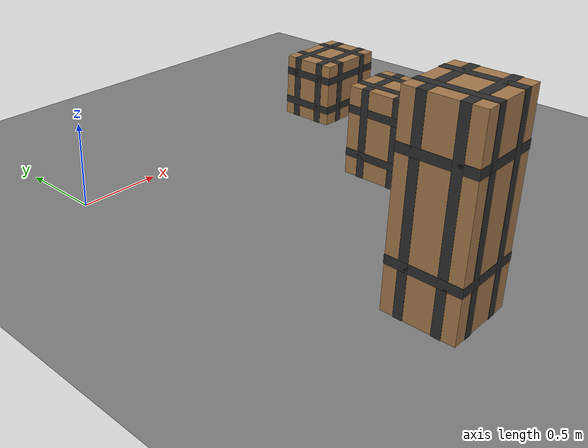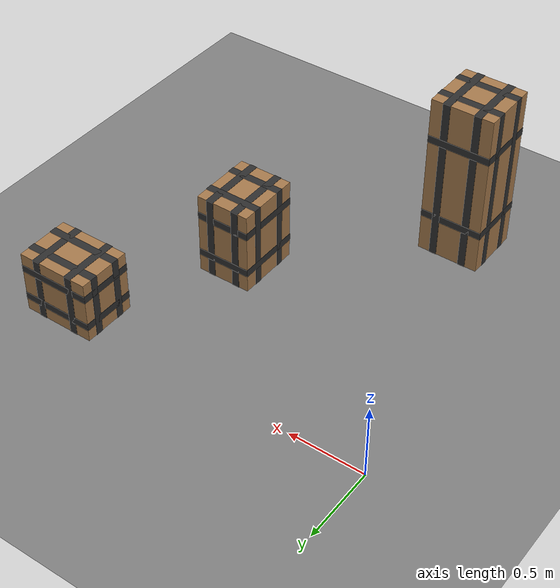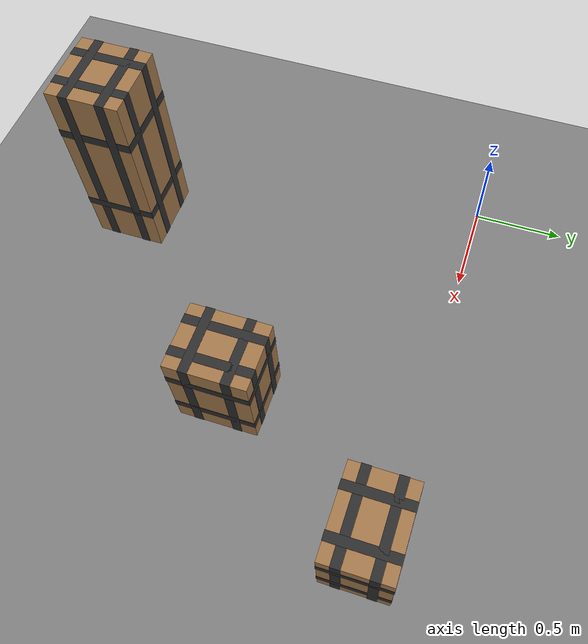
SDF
<sdf version="1.9">
 <world name="ecps295_lowbox_s19">
  <model name="ground_plane">
   <static>true</static>
   <link name="link">
    <collision name="collision">
     <geometry><plane><normal>0 0 1</normal><size>50 50</size></plane></geometry>
    </collision>
    <visual name="visual">
     <geometry><plane><normal>0 0 1</normal><size>50 50</size></plane></geometry>
     <material><ambient>0.5 0.5 0.5 1</ambient><diffuse>0.5 0.5 0.5 1</diffuse></material>
    </visual>
   </link>
  </model>
  <model name="lb1">
   <static>true</static>
   <pose>0.56 -1.95 0.55 0 0 0</pose>
   <link name="link">
    <collision name="c"><geometry><box><size>0.41 0.39 1.1</size></box></geometry></collision>
    <visual name="v">
     <geometry><box><size>0.41 0.39 1.1</size></box></geometry>
     <material><ambient>0.65 0.48 0.30 1</ambient><diffuse>0.65 0.48 0.30 1</diffuse></material>
    </visual>
    <visual name="tape_ring0">
     <pose>0.000 0.000 -0.275 0 0 0</pose>
     <geometry><box><size>0.414 0.394 0.050</size></box></geometry>
     <material><ambient>0.18 0.18 0.18 1</ambient><diffuse>0.18 0.18 0.18 1</diffuse></material>
    </visual>
    <visual name="tape_bx0">
     <pose>-0.102 0.000 0.000 0 0 0</pose>
     <geometry><box><size>0.050 0.394 1.104</size></box></geometry>
     <material><ambient>0.18 0.18 0.18 1</ambient><diffuse>0.18 0.18 0.18 1</diffuse></material>
    </visual>
    <visual name="tape_by0">
     <pose>0.000 -0.098 0.000 0 0 0</pose>
     <geometry><box><size>0.414 0.050 1.104</size></box></geometry>
     <material><ambient>0.18 0.18 0.18 1</ambient><diffuse>0.18 0.18 0.18 1</diffuse></material>
    </visual>
    <visual name="tape_ring1">
     <pose>0.000 0.000 0.275 0 0 0</pose>
     <geometry><box><size>0.414 0.394 0.050</size></box></geometry>
     <material><ambient>0.18 0.18 0.18 1</ambient><diffuse>0.18 0.18 0.18 1</diffuse></material>
    </visual>
    <visual name="tape_bx1">
     <pose>0.102 0.000 0.000 0 0 0</pose>
     <geometry><box><size>0.050 0.394 1.104</size></box></geometry>
     <material><ambient>0.18 0.18 0.18 1</ambient><diffuse>0.18 0.18 0.18 1</diffuse></material>
    </visual>
    <visual name="tape_by1">
     <pose>0.000 0.098 0.000 0 0 0</pose>
     <geometry><box><size>0.414 0.050 1.104</size></box></geometry>
     <material><ambient>0.18 0.18 0.18 1</ambient><diffuse>0.18 0.18 0.18 1</diffuse></material>
    </visual>
   </link>
  </model>
  <model name="lb2">
   <static>true</static>
   <pose>1.55 -1.0 0.28 0 0 0</pose>
   <link name="link">
    <collision name="c"><geometry><box><size>0.36 0.43 0.56</size></box></geometry></collision>
    <visual name="v">
     <geometry><box><size>0.36 0.43 0.56</size></box></geometry>
     <material><ambient>0.65 0.48 0.30 1</ambient><diffuse>0.65 0.48 0.30 1</diffuse></material>
    </visual>
    <visual name="tape_ring0">
     <pose>0.000 0.000 -0.140 0 0 0</pose>
     <geometry><box><size>0.364 0.434 0.050</size></box></geometry>
     <material><ambient>0.18 0.18 0.18 1</ambient><diffuse>0.18 0.18 0.18 1</diffuse></material>
    </visual>
    <visual name="tape_bx0">
     <pose>-0.090 0.000 0.000 0 0 0</pose>
     <geometry><box><size>0.050 0.434 0.564</size></box></geometry>
     <material><ambient>0.18 0.18 0.18 1</ambient><diffuse>0.18 0.18 0.18 1</diffuse></material>
    </visual>
    <visual name="tape_by0">
     <pose>0.000 -0.107 0.000 0 0 0</pose>
     <geometry><box><size>0.364 0.050 0.564</size></box></geometry>
     <material><ambient>0.18 0.18 0.18 1</ambient><diffuse>0.18 0.18 0.18 1</diffuse></material>
    </visual>
    <visual name="tape_ring1">
     <pose>0.000 0.000 0.140 0 0 0</pose>
     <geometry><box><size>0.364 0.434 0.050</size></box></geometry>
     <material><ambient>0.18 0.18 0.18 1</ambient><diffuse>0.18 0.18 0.18 1</diffuse></material>
    </visual>
    <visual name="tape_bx1">
     <pose>0.090 0.000 0.000 0 0 0</pose>
     <geometry><box><size>0.050 0.434 0.564</size></box></geometry>
     <material><ambient>0.18 0.18 0.18 1</ambient><diffuse>0.18 0.18 0.18 1</diffuse></material>
    </visual>
    <visual name="tape_by1">
     <pose>0.000 0.107 0.000 0 0 0</pose>
     <geometry><box><size>0.364 0.050 0.564</size></box></geometry>
     <material><ambient>0.18 0.18 0.18 1</ambient><diffuse>0.18 0.18 0.18 1</diffuse></material>
    </visual>
   </link>
  </model>
  <model name="lb3">
   <static>true</static>
   <pose>2.09 -0.08 0.21 0 0 0</pose>
   <link name="link">
    <collision name="c"><geometry><box><size>0.48 0.36 0.42</size></box></geometry></collision>
    <visual name="v">
     <geometry><box><size>0.48 0.36 0.42</size></box></geometry>
     <material><ambient>0.65 0.48 0.30 1</ambient><diffuse>0.65 0.48 0.30 1</diffuse></material>
    </visual>
    <visual name="tape_ring0">
     <pose>0.000 0.000 -0.105 0 0 0</pose>
     <geometry><box><size>0.484 0.364 0.050</size></box></geometry>
     <material><ambient>0.18 0.18 0.18 1</ambient><diffuse>0.18 0.18 0.18 1</diffuse></material>
    </visual>
    <visual name="tape_bx0">
     <pose>-0.120 0.000 0.000 0 0 0</pose>
     <geometry><box><size>0.050 0.364 0.424</size></box></geometry>
     <material><ambient>0.18 0.18 0.18 1</ambient><diffuse>0.18 0.18 0.18 1</diffuse></material>
    </visual>
    <visual name="tape_by0">
     <pose>0.000 -0.090 0.000 0 0 0</pose>
     <geometry><box><size>0.484 0.050 0.424</size></box></geometry>
     <material><ambient>0.18 0.18 0.18 1</ambient><diffuse>0.18 0.18 0.18 1</diffuse></material>
    </visual>
    <visual name="tape_ring1">
     <pose>0.000 0.000 0.105 0 0 0</pose>
     <geometry><box><size>0.484 0.364 0.050</size></box></geometry>
     <material><ambient>0.18 0.18 0.18 1</ambient><diffuse>0.18 0.18 0.18 1</diffuse></material>
    </visual>
    <visual name="tape_bx1">
     <pose>0.120 0.000 0.000 0 0 0</pose>
     <geometry><box><size>0.050 0.364 0.424</size></box></geometry>
     <material><ambient>0.18 0.18 0.18 1</ambient><diffuse>0.18 0.18 0.18 1</diffuse></material>
    </visual>
    <visual name="tape_by1">
     <pose>0.000 0.090 0.000 0 0 0</pose>
     <geometry><box><size>0.484 0.050 0.424</size></box></geometry>
     <material><ambient>0.18 0.18 0.18 1</ambient><diffuse>0.18 0.18 0.18 1</diffuse></material>
    </visual>
   </link>
  </model>
 </world>
</sdf>
